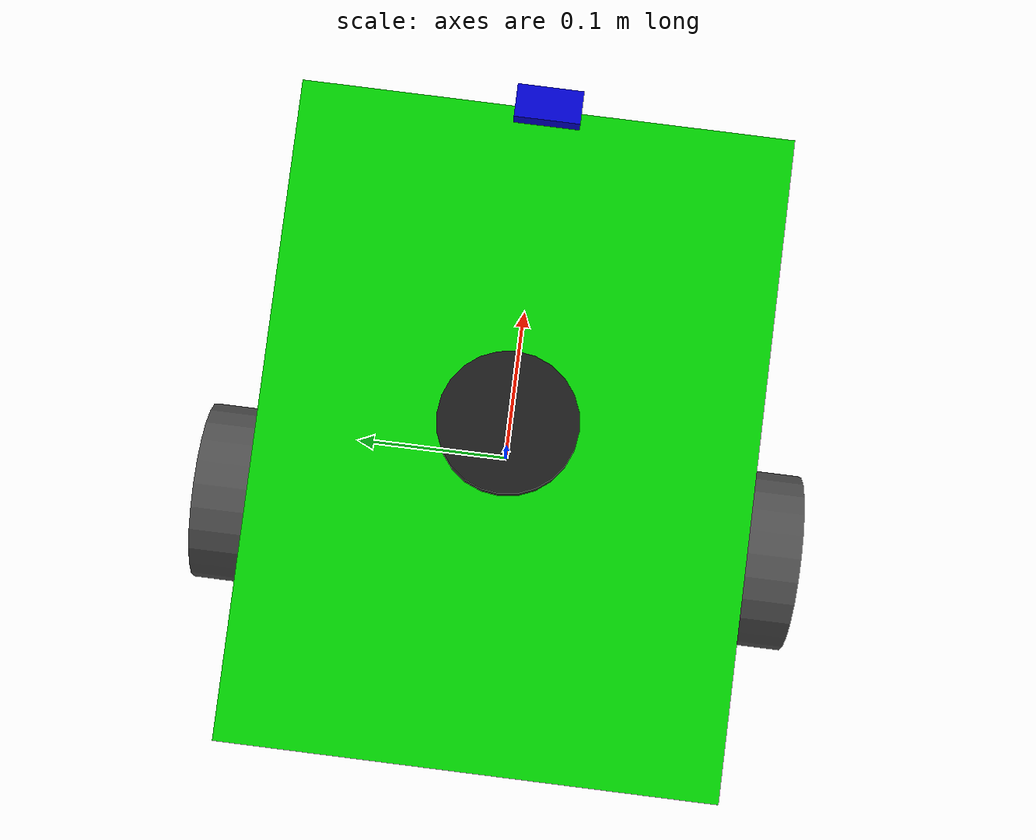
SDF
<?xml version="1.0" encoding="UTF-8"?>
<sdf version="1.7">
  <model name="medbot">
    <!-- Base footprint (for fixed base assumption) -->
    <link name="base_footprint">
      <inertial>
        <mass>30.0</mass>
        <inertia>
          <ixx>0.1</ixx>
          <ixy>0.0</ixy>
          <ixz>0.0</ixz>
          <iyy>0.1</iyy>
          <iyz>0.0</iyz>
          <izz>0.1</izz>
        </inertia>
      </inertial>
    </link>

    <!-- Main chassis -->
    <link name="base_link">
      <pose relative_to="base_footprint">0.0 0.0 0.085 0 0 0</pose>
      <inertial>
        <mass>28.0</mass>
        <inertia>
          <ixx>0.5</ixx>
          <ixy>0.0</ixy>
          <ixz>0.0</ixz>
          <iyy>0.5</iyy>
          <iyz>0.0</iyz>
          <izz>0.3</izz>
        </inertia>
      </inertial>
      <visual name="chassis_visual">
        <geometry>
          <box>
            <size>0.4 0.3 0.15</size>
          </box>
        </geometry>
        <material>
          <ambient>0.0 0.8 0.0 1.0</ambient>
          <diffuse>0.0 0.8 0.0 1.0</diffuse>
          <specular>0.1 0.1 0.1 1.0</specular>
        </material>
      </visual>
      <collision name="chassis_collision">
        <geometry>
          <box>
            <size>0.4 0.3 0.15</size>
          </box>
        </geometry>
      </collision>
    </link>

    <!-- Left wheel -->
    <link name="left_wheel_link">
      <pose relative_to="base_link">-0.05 0.16 0.0 1.57 0 0</pose>
      <inertial>
        <mass>1.0</mass>
        <inertia>
          <ixx>0.01</ixx>
          <ixy>0.0</ixy>
          <ixz>0.0</ixz>
          <iyy>0.01</iyy>
          <iyz>0.0</iyz>
          <izz>0.01</izz>
        </inertia>
      </inertial>
      <visual name="left_wheel_visual">
        <geometry>
          <cylinder>
            <radius>0.055</radius>
            <length>0.05</length>
          </cylinder>
        </geometry>
        <material>
          <ambient>0.1 0.1 0.1 1.0</ambient>
          <diffuse>0.3 0.3 0.3 1.0</diffuse>
          <specular>0.0 0.0 0.0 1.0</specular>
        </material>
      </visual>
      <collision name="left_wheel_collision">
        <geometry>
          <cylinder>
            <radius>0.055</radius>
            <length>0.05</length>
          </cylinder>
        </geometry>
      </collision>
    </link>

    <!-- Right wheel -->
    <link name="right_wheel_link">
      <pose relative_to="base_link">-0.05 -0.16 0.0 1.57 0 0</pose>
      <inertial>
        <mass>1.0</mass>
        <inertia>
          <ixx>0.01</ixx>
          <ixy>0.0</ixy>
          <ixz>0.0</ixz>
          <iyy>0.01</iyy>
          <iyz>0.0</iyz>
          <izz>0.01</izz>
        </inertia>
      </inertial>
      <visual name="right_wheel_visual">
        <geometry>
          <cylinder>
            <radius>0.055</radius>
            <length>0.05</length>
          </cylinder>
        </geometry>
        <material>
          <ambient>0.1 0.1 0.1 1.0</ambient>
          <diffuse>0.3 0.3 0.3 1.0</diffuse>
          <specular>0.0 0.0 0.0 1.0</specular>
        </material>
      </visual>
      <collision name="right_wheel_collision">
        <geometry>
          <cylinder>
            <radius>0.055</radius>
            <length>0.05</length>
          </cylinder>
        </geometry>
      </collision>
    </link>

    <!-- Caster wheel -->
    <link name="caster_wheel_link">
      <pose relative_to="base_link">0.15 0.0 -0.05 0 0 0</pose>
      <inertial>
        <mass>0.5</mass>
        <inertia>
          <ixx>0.001</ixx>
          <ixy>0.0</ixy>
          <ixz>0.0</ixz>
          <iyy>0.001</iyy>
          <iyz>0.0</iyz>
          <izz>0.001</izz>
        </inertia>
      </inertial>
      <visual name="caster_wheel_visual">
        <geometry>
          <sphere>
            <radius>0.025</radius>
          </sphere>
        </geometry>
        <material>
          <ambient>0.2 0.2 0.2 1.0</ambient>
          <diffuse>0.4 0.4 0.4 1.0</diffuse>
          <specular>0.0 0.0 0.0 1.0</specular>
        </material>
      </visual>
      <collision name="caster_wheel_collision">
        <geometry>
          <sphere>
            <radius>0.025</radius>
          </sphere>
        </geometry>
      </collision>
    </link>

    <!-- Lidar -->
    <link name="lidar_link">
      <pose relative_to="base_link">0.0 0.0 0.15 0 0 0</pose>
      <inertial>
        <mass>0.1</mass>
        <inertia>
          <ixx>0.001</ixx>
          <ixy>0.0</ixy>
          <ixz>0.0</ixz>
          <iyy>0.001</iyy>
          <iyz>0.0</iyz>
          <izz>0.001</izz>
        </inertia>
      </inertial>
      <visual name="lidar_visual">
        <geometry>
          <cylinder>
            <radius>0.04</radius>
            <length>0.02</length>
          </cylinder>
        </geometry>
        <material>
          <ambient>0.0 0.0 0.0 1.0</ambient>
          <diffuse>0.1 0.1 0.1 1.0</diffuse>
          <specular>0.5 0.5 0.5 1.0</specular>
        </material>
      </visual>
    </link>

    <!-- Camera -->
    <link name="camera_link">
      <pose relative_to="base_link">0.2 0.0 0.08 0 0 0</pose>
      <inertial>
        <mass>0.05</mass>
        <inertia>
          <ixx>0.0001</ixx>
          <ixy>0.0</ixy>
          <ixz>0.0</ixz>
          <iyy>0.0001</iyy>
          <iyz>0.0</iyz>
          <izz>0.0001</izz>
        </inertia>
      </inertial>
      <visual name="camera_visual">
        <geometry>
          <box>
            <size>0.02 0.04 0.02</size>
          </box>
        </geometry>
        <material>
          <ambient>0.0 0.0 0.5 1.0</ambient>
          <diffuse>0.0 0.0 0.8 1.0</diffuse>
          <specular>0.1 0.1 0.1 1.0</specular>
        </material>
      </visual>
    </link>

    <!-- IMU -->
    <link name="imu_link">
      <pose relative_to="base_link">0.0 0.0 0.07 0 0 0</pose>
      <inertial>
        <mass>0.01</mass>
        <inertia>
          <ixx>0.00001</ixx>
          <ixy>0.0</ixy>
          <ixz>0.0</ixz>
          <iyy>0.00001</iyy>
          <iyz>0.0</iyz>
          <izz>0.00001</izz>
        </inertia>
      </inertial>
    </link>

    <!-- Dummy delivery compartment link -->
    <link name="delivery_compartment_link">
      <pose relative_to="base_link">-0.1 0.0 0.0 0 0 0</pose>
      <inertial>
        <mass>0.5</mass>
        <inertia>
          <ixx>0.01</ixx>
          <ixy>0.0</ixy>
          <ixz>0.0</ixz>
          <iyy>0.01</iyy>
          <iyz>0.0</iyz>
          <izz>0.01</izz>
        </inertia>
      </inertial>
      <visual name="compartment_visual">
        <geometry>
          <box>
            <size>0.2 0.2 0.1</size>
          </box>
        </geometry>
        <material>
          <ambient>0.8 0.6 0.0 1.0</ambient>
          <diffuse>0.8 0.6 0.0 1.0</diffuse>
          <specular>0.1 0.1 0.1 1.0</specular>
        </material>
      </visual>
    </link>

    <!-- Medical cross (visual only) -->
    <link name="medical_cross_link">
      <pose relative_to="base_link">0.0 0.0 0.15 0 0 0</pose>
      <inertial>
        <mass>0.01</mass>
        <inertia>
          <ixx>0.00001</ixx>
          <ixy>0.0</ixy>
          <ixz>0.0</ixz>
          <iyy>0.00001</iyy>
          <iyz>0.0</iyz>
          <izz>0.00001</izz>
        </inertia>
      </inertial>
      <visual name="cross_visual">
        <geometry>
          <box>
            <size>0.05 0.05 0.01</size>
          </box>
        </geometry>
        <material>
          <ambient>1.0 0.0 0.0 1.0</ambient>
          <diffuse>1.0 0.0 0.0 1.0</diffuse>
          <specular>0.1 0.1 0.1 1.0</specular>
        </material>
      </visual>
    </link>

    <!-- Camera optical frame (dummy) -->
    <link name="camera_optical_link">
      <pose relative_to="camera_link">0.0 0.0 0.0 -1.5707963267948966 0 -1.5707963267948966</pose>
      <inertial>
        <mass>0.001</mass>
        <inertia>
          <ixx>0.00001</ixx>
          <ixy>0.0</ixy>
          <ixz>0.0</ixz>
          <iyy>0.00001</iyy>
          <iyz>0.0</iyz>
          <izz>0.00001</izz>
        </inertia>
      </inertial>
    </link>

    <!-- Joints -->
    <joint name="base_footprint_base_link" type="fixed">
      <parent>base_footprint</parent>
      <child>base_link</child>
    </joint>

    <joint name="left_wheel_joint" type="revolute">
      <parent>base_link</parent>
      <child>left_wheel_link</child>
      <axis>
        <xyz>0 1 0</xyz>
        <limit>
          <lower>-1e16</lower>
          <upper>1e16</upper>
        </limit>
        <dynamics>
          <friction>0.0</friction>
          <damping>0.1</damping>
        </dynamics>
      </axis>
    </joint>

    <joint name="right_wheel_joint" type="revolute">
      <parent>base_link</parent>
      <child>right_wheel_link</child>
      <axis>
        <xyz>0 1 0</xyz>
        <limit>
          <lower>-1e16</lower>
          <upper>1e16</upper>
        </limit>
        <dynamics>
          <friction>0.0</friction>
          <damping>0.1</damping>
        </dynamics>
      </axis>
    </joint>

    <joint name="caster_wheel_joint" type="ball">
      <parent>base_link</parent>
      <child>caster_wheel_link</child>
    </joint>

    <joint name="lidar_joint" type="fixed">
      <parent>base_link</parent>
      <child>lidar_link</child>
    </joint>

    <joint name="camera_joint" type="fixed">
      <parent>base_link</parent>
      <child>camera_link</child>
    </joint>

    <joint name="imu_joint" type="fixed">
      <parent>base_link</parent>
      <child>imu_link</child>
    </joint>

    <joint name="delivery_compartment_joint" type="fixed">
      <parent>base_link</parent>
      <child>delivery_compartment_link</child>
    </joint>

    <joint name="medical_cross_joint" type="fixed">
      <parent>base_link</parent>
      <child>medical_cross_link</child>
    </joint>

    <joint name="camera_optical_joint" type="fixed">
      <parent>camera_link</parent>
      <child>camera_optical_link</child>
    </joint>

    <!-- Plugins for Gazebo Harmonic -->
    <plugin filename="gz-sim-diff-drive-system" name="gz::sim::systems::DiffDrive">
      <left_joint>left_wheel_joint</left_joint>
      <right_joint>right_wheel_joint</right_joint>
      <wheel_separation>0.32</wheel_separation>
      <wheel_radius>0.055</wheel_radius>
      <max_linear_acceleration>1.0</max_linear_acceleration>
      <max_angular_acceleration>3.0</max_angular_acceleration>
      <max_linear_velocity>0.5</max_linear_velocity>
      <max_angular_velocity>3.14</max_angular_velocity>
      <topic>/cmd_vel</topic>
      <odom_topic>/odom</odom_topic>
      <odom_frame>odom</odom_frame>
      <robot_base_frame>base_footprint</robot_base_frame>
    </plugin>

    <plugin filename="gz-sim-imu-system" name="gz::sim::systems::Imu">
    </plugin>

  </model>
</sdf>
